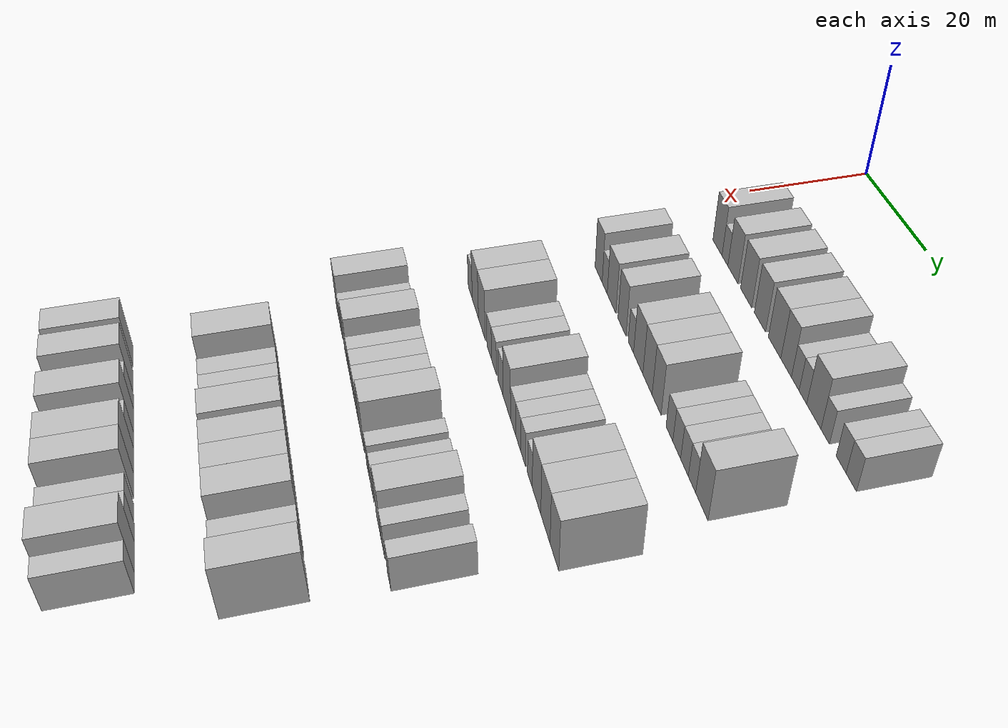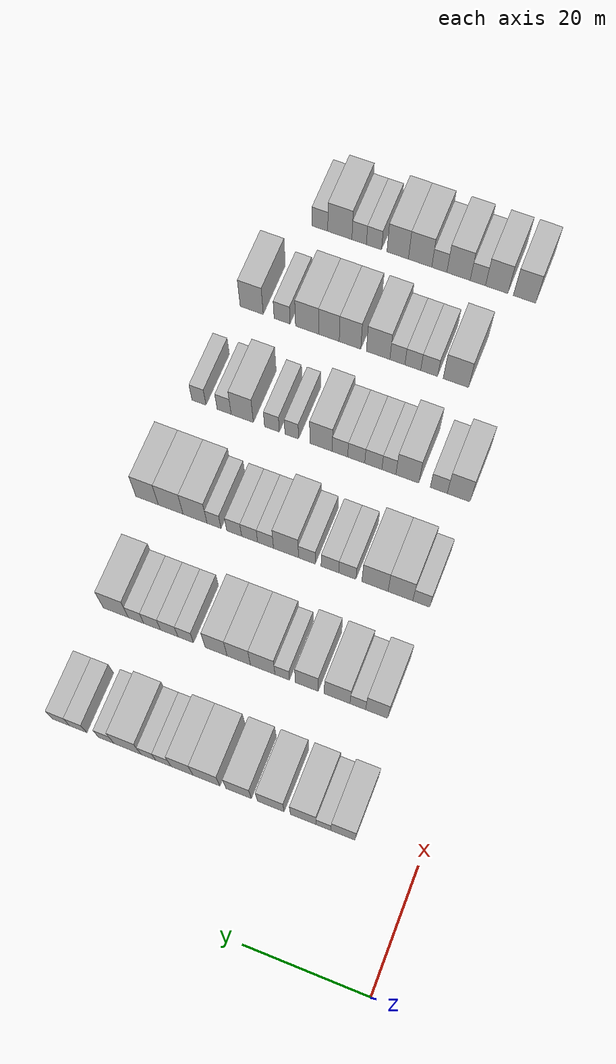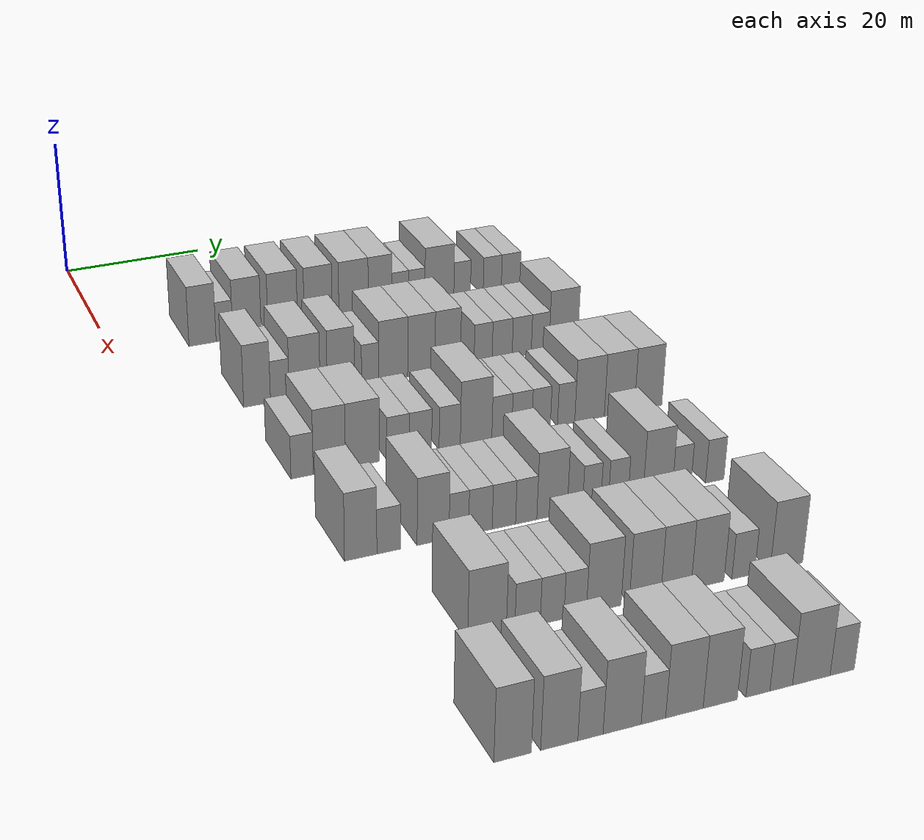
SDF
<sdf version="1.6">
 <world name="default">
  <model name="building_90">
   <static>1</static>
   <pose>25.0000 12.1221 0 0.000000 0.000000 0.000000</pose>
   <link name="link">
    <pose>0 0 4.50 0 0 0</pose>
    <collision name="collision"><geometry><box><size>10.0000 3.8618 9.0000</size></box></geometry></collision>
    <visual name="visual">
     <cast_shadows>0</cast_shadows>
     <geometry><box><size>10.0000 3.8618 9.0000</size></box></geometry>
     <material>
      <script>
       <uri>model://HANNAS_wall/materials/scripts</uri>
       <uri>model://HANNAS_wall/materials/textures</uri>
       <name>vrc/HANNAS_wall</name>
      </script>
     </material>
    </visual>
   </link>
  </model>
  <model name="building_91">
   <static>1</static>
   <pose>25.0000 15.2575 0 0.000000 0.000000 0.000000</pose>
   <link name="link">
    <pose>0 0 3.00 0 0 0</pose>
    <collision name="collision"><geometry><box><size>10.0000 2.4089 6.0000</size></box></geometry></collision>
    <visual name="visual">
     <cast_shadows>0</cast_shadows>
     <geometry><box><size>10.0000 2.4089 6.0000</size></box></geometry>
     <material>
      <script>
       <uri>model://HANNAS_wall/materials/scripts</uri>
       <uri>model://HANNAS_wall/materials/textures</uri>
       <name>vrc/HANNAS_wall</name>
      </script>
     </material>
    </visual>
   </link>
  </model>
  <model name="building_92">
   <static>1</static>
   <pose>25.0000 18.5162 0 0.000000 0.000000 0.000000</pose>
   <link name="link">
    <pose>0 0 4.50 0 0 0</pose>
    <collision name="collision"><geometry><box><size>10.0000 4.1084 9.0000</size></box></geometry></collision>
    <visual name="visual">
     <cast_shadows>0</cast_shadows>
     <geometry><box><size>10.0000 4.1084 9.0000</size></box></geometry>
     <material>
      <script>
       <uri>model://HANNAS_wall/materials/scripts</uri>
       <uri>model://HANNAS_wall/materials/textures</uri>
       <name>vrc/HANNAS_wall</name>
      </script>
     </material>
    </visual>
   </link>
  </model>
  <model name="building_93">
   <static>1</static>
   <pose>25.0000 23.7335 0 0.000000 0.000000 0.000000</pose>
   <link name="link">
    <pose>0 0 4.50 0 0 0</pose>
    <collision name="collision"><geometry><box><size>10.0000 4.3263 9.0000</size></box></geometry></collision>
    <visual name="visual">
     <cast_shadows>0</cast_shadows>
     <geometry><box><size>10.0000 4.3263 9.0000</size></box></geometry>
     <material>
      <script>
       <uri>model://HANNAS_wall/materials/scripts</uri>
       <uri>model://HANNAS_wall/materials/textures</uri>
       <name>vrc/HANNAS_wall</name>
      </script>
     </material>
    </visual>
   </link>
  </model>
  <model name="building_94">
   <static>1</static>
   <pose>25.0000 28.9676 0 0.000000 0.000000 0.000000</pose>
   <link name="link">
    <pose>0 0 4.50 0 0 0</pose>
    <collision name="collision"><geometry><box><size>10.0000 4.1418 9.0000</size></box></geometry></collision>
    <visual name="visual">
     <cast_shadows>0</cast_shadows>
     <geometry><box><size>10.0000 4.1418 9.0000</size></box></geometry>
     <material>
      <script>
       <uri>model://HANNAS_wall/materials/scripts</uri>
       <uri>model://HANNAS_wall/materials/textures</uri>
       <name>vrc/HANNAS_wall</name>
      </script>
     </material>
    </visual>
   </link>
  </model>
  <model name="building_95">
   <static>1</static>
   <pose>25.0000 34.2432 0 0.000000 0.000000 0.000000</pose>
   <link name="link">
    <pose>0 0 4.50 0 0 0</pose>
    <collision name="collision"><geometry><box><size>10.0000 4.4094 9.0000</size></box></geometry></collision>
    <visual name="visual">
     <cast_shadows>0</cast_shadows>
     <geometry><box><size>10.0000 4.4094 9.0000</size></box></geometry>
     <material>
      <script>
       <uri>model://HANNAS_wall/materials/scripts</uri>
       <uri>model://HANNAS_wall/materials/textures</uri>
       <name>vrc/HANNAS_wall</name>
      </script>
     </material>
    </visual>
   </link>
  </model>
  <model name="building_96">
   <static>1</static>
   <pose>25.0000 38.2541 0 0.000000 0.000000 0.000000</pose>
   <link name="link">
    <pose>0 0 4.50 0 0 0</pose>
    <collision name="collision"><geometry><box><size>10.0000 3.6123 9.0000</size></box></geometry></collision>
    <visual name="visual">
     <cast_shadows>0</cast_shadows>
     <geometry><box><size>10.0000 3.6123 9.0000</size></box></geometry>
     <material>
      <script>
       <uri>model://HANNAS_wall/materials/scripts</uri>
       <uri>model://HANNAS_wall/materials/textures</uri>
       <name>vrc/HANNAS_wall</name>
      </script>
     </material>
    </visual>
   </link>
  </model>
  <model name="building_97">
   <static>1</static>
   <pose>25.0000 41.3366 0 0.000000 0.000000 0.000000</pose>
   <link name="link">
    <pose>0 0 3.00 0 0 0</pose>
    <collision name="collision"><geometry><box><size>10.0000 2.5526 6.0000</size></box></geometry></collision>
    <visual name="visual">
     <cast_shadows>0</cast_shadows>
     <geometry><box><size>10.0000 2.5526 6.0000</size></box></geometry>
     <material>
      <script>
       <uri>model://HANNAS_wall/materials/scripts</uri>
       <uri>model://HANNAS_wall/materials/textures</uri>
       <name>vrc/HANNAS_wall</name>
      </script>
     </material>
    </visual>
   </link>
  </model>
  <model name="building_98">
   <static>1</static>
   <pose>25.0000 43.8496 0 0.000000 0.000000 0.000000</pose>
   <link name="link">
    <pose>0 0 3.00 0 0 0</pose>
    <collision name="collision"><geometry><box><size>10.0000 2.4736 6.0000</size></box></geometry></collision>
    <visual name="visual">
     <cast_shadows>0</cast_shadows>
     <geometry><box><size>10.0000 2.4736 6.0000</size></box></geometry>
     <material>
      <script>
       <uri>model://HANNAS_wall/materials/scripts</uri>
       <uri>model://HANNAS_wall/materials/textures</uri>
       <name>vrc/HANNAS_wall</name>
      </script>
     </material>
    </visual>
   </link>
  </model>
  <model name="building_99">
   <static>1</static>
   <pose>25.0000 47.3249 0 0.000000 0.000000 0.000000</pose>
   <link name="link">
    <pose>0 0 4.50 0 0 0</pose>
    <collision name="collision"><geometry><box><size>10.0000 4.4770 9.0000</size></box></geometry></collision>
    <visual name="visual">
     <cast_shadows>0</cast_shadows>
     <geometry><box><size>10.0000 4.4770 9.0000</size></box></geometry>
     <material>
      <script>
       <uri>model://HANNAS_wall/materials/scripts</uri>
       <uri>model://HANNAS_wall/materials/textures</uri>
       <name>vrc/HANNAS_wall</name>
      </script>
     </material>
    </visual>
   </link>
  </model>
  <model name="building_100">
   <static>1</static>
   <pose>25.0000 50.8622 0 0.000000 0.000000 0.000000</pose>
   <link name="link">
    <pose>0 0 3.00 0 0 0</pose>
    <collision name="collision"><geometry><box><size>10.0000 2.5975 6.0000</size></box></geometry></collision>
    <visual name="visual">
     <cast_shadows>0</cast_shadows>
     <geometry><box><size>10.0000 2.5975 6.0000</size></box></geometry>
     <material>
      <script>
       <uri>model://HANNAS_wall/materials/scripts</uri>
       <uri>model://HANNAS_wall/materials/textures</uri>
       <name>vrc/HANNAS_wall</name>
      </script>
     </material>
    </visual>
   </link>
  </model>
  <model name="building_101">
   <static>1</static>
   <pose>25.0000 55.5926 0 0.000000 0.000000 0.000000</pose>
   <link name="link">
    <pose>0 0 3.00 0 0 0</pose>
    <collision name="collision"><geometry><box><size>10.0000 2.8635 6.0000</size></box></geometry></collision>
    <visual name="visual">
     <cast_shadows>0</cast_shadows>
     <geometry><box><size>10.0000 2.8635 6.0000</size></box></geometry>
     <material>
      <script>
       <uri>model://HANNAS_wall/materials/scripts</uri>
       <uri>model://HANNAS_wall/materials/textures</uri>
       <name>vrc/HANNAS_wall</name>
      </script>
     </material>
    </visual>
   </link>
  </model>
  <model name="building_102">
   <static>1</static>
   <pose>25.0000 58.5027 0 0.000000 0.000000 0.000000</pose>
   <link name="link">
    <pose>0 0 3.00 0 0 0</pose>
    <collision name="collision"><geometry><box><size>10.0000 2.9566 6.0000</size></box></geometry></collision>
    <visual name="visual">
     <cast_shadows>0</cast_shadows>
     <geometry><box><size>10.0000 2.9566 6.0000</size></box></geometry>
     <material>
      <script>
       <uri>model://HANNAS_wall/materials/scripts</uri>
       <uri>model://HANNAS_wall/materials/textures</uri>
       <name>vrc/HANNAS_wall</name>
      </script>
     </material>
    </visual>
   </link>
  </model>
  <model name="building_256">
   <static>1</static>
   <pose>44.0000 13.9220 0 0.000000 0.000000 0.000000</pose>
   <link name="link">
    <pose>0 0 4.50 0 0 0</pose>
    <collision name="collision"><geometry><box><size>10.0000 3.6392 9.0000</size></box></geometry></collision>
    <visual name="visual">
     <cast_shadows>0</cast_shadows>
     <geometry><box><size>10.0000 3.6392 9.0000</size></box></geometry>
     <material>
      <script>
       <uri>model://HANNAS_wall/materials/scripts</uri>
       <uri>model://HANNAS_wall/materials/textures</uri>
       <name>vrc/HANNAS_wall</name>
      </script>
     </material>
    </visual>
   </link>
  </model>
  <model name="building_257">
   <static>1</static>
   <pose>44.0000 17.0309 0 0.000000 0.000000 0.000000</pose>
   <link name="link">
    <pose>0 0 3.00 0 0 0</pose>
    <collision name="collision"><geometry><box><size>10.0000 2.5785 6.0000</size></box></geometry></collision>
    <visual name="visual">
     <cast_shadows>0</cast_shadows>
     <geometry><box><size>10.0000 2.5785 6.0000</size></box></geometry>
     <material>
      <script>
       <uri>model://HANNAS_wall/materials/scripts</uri>
       <uri>model://HANNAS_wall/materials/textures</uri>
       <name>vrc/HANNAS_wall</name>
      </script>
     </material>
    </visual>
   </link>
  </model>
  <model name="building_258">
   <static>1</static>
   <pose>44.0000 20.4449 0 0.000000 0.000000 0.000000</pose>
   <link name="link">
    <pose>0 0 4.50 0 0 0</pose>
    <collision name="collision"><geometry><box><size>10.0000 4.2494 9.0000</size></box></geometry></collision>
    <visual name="visual">
     <cast_shadows>0</cast_shadows>
     <geometry><box><size>10.0000 4.2494 9.0000</size></box></geometry>
     <material>
      <script>
       <uri>model://HANNAS_wall/materials/scripts</uri>
       <uri>model://HANNAS_wall/materials/textures</uri>
       <name>vrc/HANNAS_wall</name>
      </script>
     </material>
    </visual>
   </link>
  </model>
  <model name="building_259">
   <static>1</static>
   <pose>44.0000 25.4684 0 0.000000 0.000000 0.000000</pose>
   <link name="link">
    <pose>0 0 4.50 0 0 0</pose>
    <collision name="collision"><geometry><box><size>10.0000 3.7976 9.0000</size></box></geometry></collision>
    <visual name="visual">
     <cast_shadows>0</cast_shadows>
     <geometry><box><size>10.0000 3.7976 9.0000</size></box></geometry>
     <material>
      <script>
       <uri>model://HANNAS_wall/materials/scripts</uri>
       <uri>model://HANNAS_wall/materials/textures</uri>
       <name>vrc/HANNAS_wall</name>
      </script>
     </material>
    </visual>
   </link>
  </model>
  <model name="building_260">
   <static>1</static>
   <pose>44.0000 29.5765 0 0.000000 0.000000 0.000000</pose>
   <link name="link">
    <pose>0 0 3.00 0 0 0</pose>
    <collision name="collision"><geometry><box><size>10.0000 2.4185 6.0000</size></box></geometry></collision>
    <visual name="visual">
     <cast_shadows>0</cast_shadows>
     <geometry><box><size>10.0000 2.4185 6.0000</size></box></geometry>
     <material>
      <script>
       <uri>model://HANNAS_wall/materials/scripts</uri>
       <uri>model://HANNAS_wall/materials/textures</uri>
       <name>vrc/HANNAS_wall</name>
      </script>
     </material>
    </visual>
   </link>
  </model>
  <model name="building_261">
   <static>1</static>
   <pose>44.0000 32.8462 0 0.000000 0.000000 0.000000</pose>
   <link name="link">
    <pose>0 0 4.50 0 0 0</pose>
    <collision name="collision"><geometry><box><size>10.0000 4.1210 9.0000</size></box></geometry></collision>
    <visual name="visual">
     <cast_shadows>0</cast_shadows>
     <geometry><box><size>10.0000 4.1210 9.0000</size></box></geometry>
     <material>
      <script>
       <uri>model://HANNAS_wall/materials/scripts</uri>
       <uri>model://HANNAS_wall/materials/textures</uri>
       <name>vrc/HANNAS_wall</name>
      </script>
     </material>
    </visual>
   </link>
  </model>
  <model name="building_262">
   <static>1</static>
   <pose>44.0000 36.8691 0 0.000000 0.000000 0.000000</pose>
   <link name="link">
    <pose>0 0 4.50 0 0 0</pose>
    <collision name="collision"><geometry><box><size>10.0000 3.9248 9.0000</size></box></geometry></collision>
    <visual name="visual">
     <cast_shadows>0</cast_shadows>
     <geometry><box><size>10.0000 3.9248 9.0000</size></box></geometry>
     <material>
      <script>
       <uri>model://HANNAS_wall/materials/scripts</uri>
       <uri>model://HANNAS_wall/materials/textures</uri>
       <name>vrc/HANNAS_wall</name>
      </script>
     </material>
    </visual>
   </link>
  </model>
  <model name="building_263">
   <static>1</static>
   <pose>44.0000 40.6826 0 0.000000 0.000000 0.000000</pose>
   <link name="link">
    <pose>0 0 4.50 0 0 0</pose>
    <collision name="collision"><geometry><box><size>10.0000 3.7023 9.0000</size></box></geometry></collision>
    <visual name="visual">
     <cast_shadows>0</cast_shadows>
     <geometry><box><size>10.0000 3.7023 9.0000</size></box></geometry>
     <material>
      <script>
       <uri>model://HANNAS_wall/materials/scripts</uri>
       <uri>model://HANNAS_wall/materials/textures</uri>
       <name>vrc/HANNAS_wall</name>
      </script>
     </material>
    </visual>
   </link>
  </model>
  <model name="building_264">
   <static>1</static>
   <pose>44.0000 45.8591 0 0.000000 0.000000 0.000000</pose>
   <link name="link">
    <pose>0 0 3.00 0 0 0</pose>
    <collision name="collision"><geometry><box><size>10.0000 2.6507 6.0000</size></box></geometry></collision>
    <visual name="visual">
     <cast_shadows>0</cast_shadows>
     <geometry><box><size>10.0000 2.6507 6.0000</size></box></geometry>
     <material>
      <script>
       <uri>model://HANNAS_wall/materials/scripts</uri>
       <uri>model://HANNAS_wall/materials/textures</uri>
       <name>vrc/HANNAS_wall</name>
      </script>
     </material>
    </visual>
   </link>
  </model>
  <model name="building_265">
   <static>1</static>
   <pose>44.0000 48.6683 0 0.000000 0.000000 0.000000</pose>
   <link name="link">
    <pose>0 0 3.00 0 0 0</pose>
    <collision name="collision"><geometry><box><size>10.0000 2.9677 6.0000</size></box></geometry></collision>
    <visual name="visual">
     <cast_shadows>0</cast_shadows>
     <geometry><box><size>10.0000 2.9677 6.0000</size></box></geometry>
     <material>
      <script>
       <uri>model://HANNAS_wall/materials/scripts</uri>
       <uri>model://HANNAS_wall/materials/textures</uri>
       <name>vrc/HANNAS_wall</name>
      </script>
     </material>
    </visual>
   </link>
  </model>
  <model name="building_266">
   <static>1</static>
   <pose>44.0000 51.5805 0 0.000000 0.000000 0.000000</pose>
   <link name="link">
    <pose>0 0 3.00 0 0 0</pose>
    <collision name="collision"><geometry><box><size>10.0000 2.8566 6.0000</size></box></geometry></collision>
    <visual name="visual">
     <cast_shadows>0</cast_shadows>
     <geometry><box><size>10.0000 2.8566 6.0000</size></box></geometry>
     <material>
      <script>
       <uri>model://HANNAS_wall/materials/scripts</uri>
       <uri>model://HANNAS_wall/materials/textures</uri>
       <name>vrc/HANNAS_wall</name>
      </script>
     </material>
    </visual>
   </link>
  </model>
  <model name="building_267">
   <static>1</static>
   <pose>44.0000 54.3404 0 0.000000 0.000000 0.000000</pose>
   <link name="link">
    <pose>0 0 3.00 0 0 0</pose>
    <collision name="collision"><geometry><box><size>10.0000 2.6632 6.0000</size></box></geometry></collision>
    <visual name="visual">
     <cast_shadows>0</cast_shadows>
     <geometry><box><size>10.0000 2.6632 6.0000</size></box></geometry>
     <material>
      <script>
       <uri>model://HANNAS_wall/materials/scripts</uri>
       <uri>model://HANNAS_wall/materials/textures</uri>
       <name>vrc/HANNAS_wall</name>
      </script>
     </material>
    </visual>
   </link>
  </model>
  <model name="building_268">
   <static>1</static>
   <pose>44.0000 57.8378 0 0.000000 0.000000 0.000000</pose>
   <link name="link">
    <pose>0 0 4.50 0 0 0</pose>
    <collision name="collision"><geometry><box><size>10.0000 4.3316 9.0000</size></box></geometry></collision>
    <visual name="visual">
     <cast_shadows>0</cast_shadows>
     <geometry><box><size>10.0000 4.3316 9.0000</size></box></geometry>
     <material>
      <script>
       <uri>model://HANNAS_wall/materials/scripts</uri>
       <uri>model://HANNAS_wall/materials/textures</uri>
       <name>vrc/HANNAS_wall</name>
      </script>
     </material>
    </visual>
   </link>
  </model>
  <model name="building_432">
   <static>1</static>
   <pose>63.0000 13.5928 0 0.000000 0.000000 0.000000</pose>
   <link name="link">
    <pose>0 0 3.00 0 0 0</pose>
    <collision name="collision"><geometry><box><size>10.0000 2.8592 6.0000</size></box></geometry></collision>
    <visual name="visual">
     <cast_shadows>0</cast_shadows>
     <geometry><box><size>10.0000 2.8592 6.0000</size></box></geometry>
     <material>
      <script>
       <uri>model://HANNAS_wall/materials/scripts</uri>
       <uri>model://HANNAS_wall/materials/textures</uri>
       <name>vrc/HANNAS_wall</name>
      </script>
     </material>
    </visual>
   </link>
  </model>
  <model name="building_433">
   <static>1</static>
   <pose>63.0000 17.1117 0 0.000000 0.000000 0.000000</pose>
   <link name="link">
    <pose>0 0 4.50 0 0 0</pose>
    <collision name="collision"><geometry><box><size>10.0000 4.1786 9.0000</size></box></geometry></collision>
    <visual name="visual">
     <cast_shadows>0</cast_shadows>
     <geometry><box><size>10.0000 4.1786 9.0000</size></box></geometry>
     <material>
      <script>
       <uri>model://HANNAS_wall/materials/scripts</uri>
       <uri>model://HANNAS_wall/materials/textures</uri>
       <name>vrc/HANNAS_wall</name>
      </script>
     </material>
    </visual>
   </link>
  </model>
  <model name="building_434">
   <static>1</static>
   <pose>63.0000 21.4201 0 0.000000 0.000000 0.000000</pose>
   <link name="link">
    <pose>0 0 4.50 0 0 0</pose>
    <collision name="collision"><geometry><box><size>10.0000 4.4380 9.0000</size></box></geometry></collision>
    <visual name="visual">
     <cast_shadows>0</cast_shadows>
     <geometry><box><size>10.0000 4.4380 9.0000</size></box></geometry>
     <material>
      <script>
       <uri>model://HANNAS_wall/materials/scripts</uri>
       <uri>model://HANNAS_wall/materials/textures</uri>
       <name>vrc/HANNAS_wall</name>
      </script>
     </material>
    </visual>
   </link>
  </model>
  <model name="building_435">
   <static>1</static>
   <pose>63.0000 26.1129 0 0.000000 0.000000 0.000000</pose>
   <link name="link">
    <pose>0 0 3.00 0 0 0</pose>
    <collision name="collision"><geometry><box><size>10.0000 2.9476 6.0000</size></box></geometry></collision>
    <visual name="visual">
     <cast_shadows>0</cast_shadows>
     <geometry><box><size>10.0000 2.9476 6.0000</size></box></geometry>
     <material>
      <script>
       <uri>model://HANNAS_wall/materials/scripts</uri>
       <uri>model://HANNAS_wall/materials/textures</uri>
       <name>vrc/HANNAS_wall</name>
      </script>
     </material>
    </visual>
   </link>
  </model>
  <model name="building_436">
   <static>1</static>
   <pose>63.0000 29.0862 0 0.000000 0.000000 0.000000</pose>
   <link name="link">
    <pose>0 0 3.00 0 0 0</pose>
    <collision name="collision"><geometry><box><size>10.0000 2.9990 6.0000</size></box></geometry></collision>
    <visual name="visual">
     <cast_shadows>0</cast_shadows>
     <geometry><box><size>10.0000 2.9990 6.0000</size></box></geometry>
     <material>
      <script>
       <uri>model://HANNAS_wall/materials/scripts</uri>
       <uri>model://HANNAS_wall/materials/textures</uri>
       <name>vrc/HANNAS_wall</name>
      </script>
     </material>
    </visual>
   </link>
  </model>
  <model name="building_437">
   <static>1</static>
   <pose>63.0000 33.0215 0 0.000000 0.000000 0.000000</pose>
   <link name="link">
    <pose>0 0 3.00 0 0 0</pose>
    <collision name="collision"><geometry><box><size>10.0000 2.8717 6.0000</size></box></geometry></collision>
    <visual name="visual">
     <cast_shadows>0</cast_shadows>
     <geometry><box><size>10.0000 2.8717 6.0000</size></box></geometry>
     <material>
      <script>
       <uri>model://HANNAS_wall/materials/scripts</uri>
       <uri>model://HANNAS_wall/materials/textures</uri>
       <name>vrc/HANNAS_wall</name>
      </script>
     </material>
    </visual>
   </link>
  </model>
  <model name="building_438">
   <static>1</static>
   <pose>63.0000 36.6079 0 0.000000 0.000000 0.000000</pose>
   <link name="link">
    <pose>0 0 4.50 0 0 0</pose>
    <collision name="collision"><geometry><box><size>10.0000 4.3013 9.0000</size></box></geometry></collision>
    <visual name="visual">
     <cast_shadows>0</cast_shadows>
     <geometry><box><size>10.0000 4.3013 9.0000</size></box></geometry>
     <material>
      <script>
       <uri>model://HANNAS_wall/materials/scripts</uri>
       <uri>model://HANNAS_wall/materials/textures</uri>
       <name>vrc/HANNAS_wall</name>
      </script>
     </material>
    </visual>
   </link>
  </model>
  <model name="building_439">
   <static>1</static>
   <pose>63.0000 40.1319 0 0.000000 0.000000 0.000000</pose>
   <link name="link">
    <pose>0 0 3.00 0 0 0</pose>
    <collision name="collision"><geometry><box><size>10.0000 2.7467 6.0000</size></box></geometry></collision>
    <visual name="visual">
     <cast_shadows>0</cast_shadows>
     <geometry><box><size>10.0000 2.7467 6.0000</size></box></geometry>
     <material>
      <script>
       <uri>model://HANNAS_wall/materials/scripts</uri>
       <uri>model://HANNAS_wall/materials/textures</uri>
       <name>vrc/HANNAS_wall</name>
      </script>
     </material>
    </visual>
   </link>
  </model>
  <model name="building_440">
   <static>1</static>
   <pose>63.0000 42.8915 0 0.000000 0.000000 0.000000</pose>
   <link name="link">
    <pose>0 0 3.00 0 0 0</pose>
    <collision name="collision"><geometry><box><size>10.0000 2.7725 6.0000</size></box></geometry></collision>
    <visual name="visual">
     <cast_shadows>0</cast_shadows>
     <geometry><box><size>10.0000 2.7725 6.0000</size></box></geometry>
     <material>
      <script>
       <uri>model://HANNAS_wall/materials/scripts</uri>
       <uri>model://HANNAS_wall/materials/textures</uri>
       <name>vrc/HANNAS_wall</name>
      </script>
     </material>
    </visual>
   </link>
  </model>
  <model name="building_441">
   <static>1</static>
   <pose>63.0000 45.5735 0 0.000000 0.000000 0.000000</pose>
   <link name="link">
    <pose>0 0 3.00 0 0 0</pose>
    <collision name="collision"><geometry><box><size>10.0000 2.5914 6.0000</size></box></geometry></collision>
    <visual name="visual">
     <cast_shadows>0</cast_shadows>
     <geometry><box><size>10.0000 2.5914 6.0000</size></box></geometry>
     <material>
      <script>
       <uri>model://HANNAS_wall/materials/scripts</uri>
       <uri>model://HANNAS_wall/materials/textures</uri>
       <name>vrc/HANNAS_wall</name>
      </script>
     </material>
    </visual>
   </link>
  </model>
  <model name="building_442">
   <static>1</static>
   <pose>63.0000 49.0884 0 0.000000 0.000000 0.000000</pose>
   <link name="link">
    <pose>0 0 3.00 0 0 0</pose>
    <collision name="collision"><geometry><box><size>10.0000 2.4385 6.0000</size></box></geometry></collision>
    <visual name="visual">
     <cast_shadows>0</cast_shadows>
     <geometry><box><size>10.0000 2.4385 6.0000</size></box></geometry>
     <material>
      <script>
       <uri>model://HANNAS_wall/materials/scripts</uri>
       <uri>model://HANNAS_wall/materials/textures</uri>
       <name>vrc/HANNAS_wall</name>
      </script>
     </material>
    </visual>
   </link>
  </model>
  <model name="building_443">
   <static>1</static>
   <pose>63.0000 52.4089 0 0.000000 0.000000 0.000000</pose>
   <link name="link">
    <pose>0 0 4.50 0 0 0</pose>
    <collision name="collision"><geometry><box><size>10.0000 4.2025 9.0000</size></box></geometry></collision>
    <visual name="visual">
     <cast_shadows>0</cast_shadows>
     <geometry><box><size>10.0000 4.2025 9.0000</size></box></geometry>
     <material>
      <script>
       <uri>model://HANNAS_wall/materials/scripts</uri>
       <uri>model://HANNAS_wall/materials/textures</uri>
       <name>vrc/HANNAS_wall</name>
      </script>
     </material>
    </visual>
   </link>
  </model>
  <model name="building_444">
   <static>1</static>
   <pose>63.0000 56.6744 0 0.000000 0.000000 0.000000</pose>
   <link name="link">
    <pose>0 0 4.50 0 0 0</pose>
    <collision name="collision"><geometry><box><size>10.0000 4.3285 9.0000</size></box></geometry></collision>
    <visual name="visual">
     <cast_shadows>0</cast_shadows>
     <geometry><box><size>10.0000 4.3285 9.0000</size></box></geometry>
     <material>
      <script>
       <uri>model://HANNAS_wall/materials/scripts</uri>
       <uri>model://HANNAS_wall/materials/textures</uri>
       <name>vrc/HANNAS_wall</name>
      </script>
     </material>
    </visual>
   </link>
  </model>
  <model name="building_445">
   <static>1</static>
   <pose>63.0000 60.8330 0 0.000000 0.000000 0.000000</pose>
   <link name="link">
    <pose>0 0 4.50 0 0 0</pose>
    <collision name="collision"><geometry><box><size>10.0000 3.9887 9.0000</size></box></geometry></collision>
    <visual name="visual">
     <cast_shadows>0</cast_shadows>
     <geometry><box><size>10.0000 3.9887 9.0000</size></box></geometry>
     <material>
      <script>
       <uri>model://HANNAS_wall/materials/scripts</uri>
       <uri>model://HANNAS_wall/materials/textures</uri>
       <name>vrc/HANNAS_wall</name>
      </script>
     </material>
    </visual>
   </link>
  </model>
  <model name="building_607">
   <static>1</static>
   <pose>82.0000 14.1231 0 0.000000 0.000000 0.000000</pose>
   <link name="link">
    <pose>0 0 4.50 0 0 0</pose>
    <collision name="collision"><geometry><box><size>10.0000 3.9175 9.0000</size></box></geometry></collision>
    <visual name="visual">
     <cast_shadows>0</cast_shadows>
     <geometry><box><size>10.0000 3.9175 9.0000</size></box></geometry>
     <material>
      <script>
       <uri>model://HANNAS_wall/materials/scripts</uri>
       <uri>model://HANNAS_wall/materials/textures</uri>
       <name>vrc/HANNAS_wall</name>
      </script>
     </material>
    </visual>
   </link>
  </model>
  <model name="building_608">
   <static>1</static>
   <pose>82.0000 17.5470 0 0.000000 0.000000 0.000000</pose>
   <link name="link">
    <pose>0 0 3.00 0 0 0</pose>
    <collision name="collision"><geometry><box><size>10.0000 2.9303 6.0000</size></box></geometry></collision>
    <visual name="visual">
     <cast_shadows>0</cast_shadows>
     <geometry><box><size>10.0000 2.9303 6.0000</size></box></geometry>
     <material>
      <script>
       <uri>model://HANNAS_wall/materials/scripts</uri>
       <uri>model://HANNAS_wall/materials/textures</uri>
       <name>vrc/HANNAS_wall</name>
      </script>
     </material>
    </visual>
   </link>
  </model>
  <model name="building_609">
   <static>1</static>
   <pose>82.0000 22.9975 0 0.000000 0.000000 0.000000</pose>
   <link name="link">
    <pose>0 0 4.50 0 0 0</pose>
    <collision name="collision"><geometry><box><size>10.0000 3.9706 9.0000</size></box></geometry></collision>
    <visual name="visual">
     <cast_shadows>0</cast_shadows>
     <geometry><box><size>10.0000 3.9706 9.0000</size></box></geometry>
     <material>
      <script>
       <uri>model://HANNAS_wall/materials/scripts</uri>
       <uri>model://HANNAS_wall/materials/textures</uri>
       <name>vrc/HANNAS_wall</name>
      </script>
     </material>
    </visual>
   </link>
  </model>
  <model name="building_610">
   <static>1</static>
   <pose>82.0000 26.2047 0 0.000000 0.000000 0.000000</pose>
   <link name="link">
    <pose>0 0 3.00 0 0 0</pose>
    <collision name="collision"><geometry><box><size>10.0000 2.4438 6.0000</size></box></geometry></collision>
    <visual name="visual">
     <cast_shadows>0</cast_shadows>
     <geometry><box><size>10.0000 2.4438 6.0000</size></box></geometry>
     <material>
      <script>
       <uri>model://HANNAS_wall/materials/scripts</uri>
       <uri>model://HANNAS_wall/materials/textures</uri>
       <name>vrc/HANNAS_wall</name>
      </script>
     </material>
    </visual>
   </link>
  </model>
  <model name="building_611">
   <static>1</static>
   <pose>82.0000 28.9193 0 0.000000 0.000000 0.000000</pose>
   <link name="link">
    <pose>0 0 3.00 0 0 0</pose>
    <collision name="collision"><geometry><box><size>10.0000 2.9854 6.0000</size></box></geometry></collision>
    <visual name="visual">
     <cast_shadows>0</cast_shadows>
     <geometry><box><size>10.0000 2.9854 6.0000</size></box></geometry>
     <material>
      <script>
       <uri>model://HANNAS_wall/materials/scripts</uri>
       <uri>model://HANNAS_wall/materials/textures</uri>
       <name>vrc/HANNAS_wall</name>
      </script>
     </material>
    </visual>
   </link>
  </model>
  <model name="building_612">
   <static>1</static>
   <pose>82.0000 31.9011 0 0.000000 0.000000 0.000000</pose>
   <link name="link">
    <pose>0 0 3.00 0 0 0</pose>
    <collision name="collision"><geometry><box><size>10.0000 2.9783 6.0000</size></box></geometry></collision>
    <visual name="visual">
     <cast_shadows>0</cast_shadows>
     <geometry><box><size>10.0000 2.9783 6.0000</size></box></geometry>
     <material>
      <script>
       <uri>model://HANNAS_wall/materials/scripts</uri>
       <uri>model://HANNAS_wall/materials/textures</uri>
       <name>vrc/HANNAS_wall</name>
      </script>
     </material>
    </visual>
   </link>
  </model>
  <model name="building_613">
   <static>1</static>
   <pose>82.0000 34.7546 0 0.000000 0.000000 0.000000</pose>
   <link name="link">
    <pose>0 0 3.00 0 0 0</pose>
    <collision name="collision"><geometry><box><size>10.0000 2.7288 6.0000</size></box></geometry></collision>
    <visual name="visual">
     <cast_shadows>0</cast_shadows>
     <geometry><box><size>10.0000 2.7288 6.0000</size></box></geometry>
     <material>
      <script>
       <uri>model://HANNAS_wall/materials/scripts</uri>
       <uri>model://HANNAS_wall/materials/textures</uri>
       <name>vrc/HANNAS_wall</name>
      </script>
     </material>
    </visual>
   </link>
  </model>
  <model name="building_614">
   <static>1</static>
   <pose>82.0000 38.0854 0 0.000000 0.000000 0.000000</pose>
   <link name="link">
    <pose>0 0 4.50 0 0 0</pose>
    <collision name="collision"><geometry><box><size>10.0000 3.9326 9.0000</size></box></geometry></collision>
    <visual name="visual">
     <cast_shadows>0</cast_shadows>
     <geometry><box><size>10.0000 3.9326 9.0000</size></box></geometry>
     <material>
      <script>
       <uri>model://HANNAS_wall/materials/scripts</uri>
       <uri>model://HANNAS_wall/materials/textures</uri>
       <name>vrc/HANNAS_wall</name>
      </script>
     </material>
    </visual>
   </link>
  </model>
  <model name="building_615">
   <static>1</static>
   <pose>82.0000 43.2528 0 0.000000 0.000000 0.000000</pose>
   <link name="link">
    <pose>0 0 3.00 0 0 0</pose>
    <collision name="collision"><geometry><box><size>10.0000 2.4023 6.0000</size></box></geometry></collision>
    <visual name="visual">
     <cast_shadows>0</cast_shadows>
     <geometry><box><size>10.0000 2.4023 6.0000</size></box></geometry>
     <material>
      <script>
       <uri>model://HANNAS_wall/materials/scripts</uri>
       <uri>model://HANNAS_wall/materials/textures</uri>
       <name>vrc/HANNAS_wall</name>
      </script>
     </material>
    </visual>
   </link>
  </model>
  <model name="building_616">
   <static>1</static>
   <pose>82.0000 46.7648 0 0.000000 0.000000 0.000000</pose>
   <link name="link">
    <pose>0 0 3.00 0 0 0</pose>
    <collision name="collision"><geometry><box><size>10.0000 2.6216 6.0000</size></box></geometry></collision>
    <visual name="visual">
     <cast_shadows>0</cast_shadows>
     <geometry><box><size>10.0000 2.6216 6.0000</size></box></geometry>
     <material>
      <script>
       <uri>model://HANNAS_wall/materials/scripts</uri>
       <uri>model://HANNAS_wall/materials/textures</uri>
       <name>vrc/HANNAS_wall</name>
      </script>
     </material>
    </visual>
   </link>
  </model>
  <model name="building_617">
   <static>1</static>
   <pose>82.0000 52.0614 0 0.000000 0.000000 0.000000</pose>
   <link name="link">
    <pose>0 0 4.50 0 0 0</pose>
    <collision name="collision"><geometry><box><size>10.0000 3.9716 9.0000</size></box></geometry></collision>
    <visual name="visual">
     <cast_shadows>0</cast_shadows>
     <geometry><box><size>10.0000 3.9716 9.0000</size></box></geometry>
     <material>
      <script>
       <uri>model://HANNAS_wall/materials/scripts</uri>
       <uri>model://HANNAS_wall/materials/textures</uri>
       <name>vrc/HANNAS_wall</name>
      </script>
     </material>
    </visual>
   </link>
  </model>
  <model name="building_618">
   <static>1</static>
   <pose>82.0000 55.3039 0 0.000000 0.000000 0.000000</pose>
   <link name="link">
    <pose>0 0 3.00 0 0 0</pose>
    <collision name="collision"><geometry><box><size>10.0000 2.5134 6.0000</size></box></geometry></collision>
    <visual name="visual">
     <cast_shadows>0</cast_shadows>
     <geometry><box><size>10.0000 2.5134 6.0000</size></box></geometry>
     <material>
      <script>
       <uri>model://HANNAS_wall/materials/scripts</uri>
       <uri>model://HANNAS_wall/materials/textures</uri>
       <name>vrc/HANNAS_wall</name>
      </script>
     </material>
    </visual>
   </link>
  </model>
  <model name="building_619">
   <static>1</static>
   <pose>82.0000 59.8286 0 0.000000 0.000000 0.000000</pose>
   <link name="link">
    <pose>0 0 3.00 0 0 0</pose>
    <collision name="collision"><geometry><box><size>10.0000 2.5361 6.0000</size></box></geometry></collision>
    <visual name="visual">
     <cast_shadows>0</cast_shadows>
     <geometry><box><size>10.0000 2.5361 6.0000</size></box></geometry>
     <material>
      <script>
       <uri>model://HANNAS_wall/materials/scripts</uri>
       <uri>model://HANNAS_wall/materials/textures</uri>
       <name>vrc/HANNAS_wall</name>
      </script>
     </material>
    </visual>
   </link>
  </model>
  <model name="building_783">
   <static>1</static>
   <pose>101.0000 21.4140 0 0.000000 0.000000 0.000000</pose>
   <link name="link">
    <pose>0 0 4.50 0 0 0</pose>
    <collision name="collision"><geometry><box><size>10.0000 4.4961 9.0000</size></box></geometry></collision>
    <visual name="visual">
     <cast_shadows>0</cast_shadows>
     <geometry><box><size>10.0000 4.4961 9.0000</size></box></geometry>
     <material>
      <script>
       <uri>model://HANNAS_wall/materials/scripts</uri>
       <uri>model://HANNAS_wall/materials/textures</uri>
       <name>vrc/HANNAS_wall</name>
      </script>
     </material>
    </visual>
   </link>
  </model>
  <model name="building_784">
   <static>1</static>
   <pose>101.0000 26.1568 0 0.000000 0.000000 0.000000</pose>
   <link name="link">
    <pose>0 0 3.00 0 0 0</pose>
    <collision name="collision"><geometry><box><size>10.0000 2.9895 6.0000</size></box></geometry></collision>
    <visual name="visual">
     <cast_shadows>0</cast_shadows>
     <geometry><box><size>10.0000 2.9895 6.0000</size></box></geometry>
     <material>
      <script>
       <uri>model://HANNAS_wall/materials/scripts</uri>
       <uri>model://HANNAS_wall/materials/textures</uri>
       <name>vrc/HANNAS_wall</name>
      </script>
     </material>
    </visual>
   </link>
  </model>
  <model name="building_785">
   <static>1</static>
   <pose>101.0000 29.0649 0 0.000000 0.000000 0.000000</pose>
   <link name="link">
    <pose>0 0 3.00 0 0 0</pose>
    <collision name="collision"><geometry><box><size>10.0000 2.8266 6.0000</size></box></geometry></collision>
    <visual name="visual">
     <cast_shadows>0</cast_shadows>
     <geometry><box><size>10.0000 2.8266 6.0000</size></box></geometry>
     <material>
      <script>
       <uri>model://HANNAS_wall/materials/scripts</uri>
       <uri>model://HANNAS_wall/materials/textures</uri>
       <name>vrc/HANNAS_wall</name>
      </script>
     </material>
    </visual>
   </link>
  </model>
  <model name="building_786">
   <static>1</static>
   <pose>101.0000 31.8231 0 0.000000 0.000000 0.000000</pose>
   <link name="link">
    <pose>0 0 3.00 0 0 0</pose>
    <collision name="collision"><geometry><box><size>10.0000 2.6899 6.0000</size></box></geometry></collision>
    <visual name="visual">
     <cast_shadows>0</cast_shadows>
     <geometry><box><size>10.0000 2.6899 6.0000</size></box></geometry>
     <material>
      <script>
       <uri>model://HANNAS_wall/materials/scripts</uri>
       <uri>model://HANNAS_wall/materials/textures</uri>
       <name>vrc/HANNAS_wall</name>
      </script>
     </material>
    </visual>
   </link>
  </model>
  <model name="building_787">
   <static>1</static>
   <pose>101.0000 35.2775 0 0.000000 0.000000 0.000000</pose>
   <link name="link">
    <pose>0 0 4.50 0 0 0</pose>
    <collision name="collision"><geometry><box><size>10.0000 4.2188 9.0000</size></box></geometry></collision>
    <visual name="visual">
     <cast_shadows>0</cast_shadows>
     <geometry><box><size>10.0000 4.2188 9.0000</size></box></geometry>
     <material>
      <script>
       <uri>model://HANNAS_wall/materials/scripts</uri>
       <uri>model://HANNAS_wall/materials/textures</uri>
       <name>vrc/HANNAS_wall</name>
      </script>
     </material>
    </visual>
   </link>
  </model>
  <model name="building_788">
   <static>1</static>
   <pose>101.0000 40.3310 0 0.000000 0.000000 0.000000</pose>
   <link name="link">
    <pose>0 0 4.50 0 0 0</pose>
    <collision name="collision"><geometry><box><size>10.0000 3.8883 9.0000</size></box></geometry></collision>
    <visual name="visual">
     <cast_shadows>0</cast_shadows>
     <geometry><box><size>10.0000 3.8883 9.0000</size></box></geometry>
     <material>
      <script>
       <uri>model://HANNAS_wall/materials/scripts</uri>
       <uri>model://HANNAS_wall/materials/textures</uri>
       <name>vrc/HANNAS_wall</name>
      </script>
     </material>
    </visual>
   </link>
  </model>
  <model name="building_789">
   <static>1</static>
   <pose>101.0000 44.1567 0 0.000000 0.000000 0.000000</pose>
   <link name="link">
    <pose>0 0 4.50 0 0 0</pose>
    <collision name="collision"><geometry><box><size>10.0000 3.7631 9.0000</size></box></geometry></collision>
    <visual name="visual">
     <cast_shadows>0</cast_shadows>
     <geometry><box><size>10.0000 3.7631 9.0000</size></box></geometry>
     <material>
      <script>
       <uri>model://HANNAS_wall/materials/scripts</uri>
       <uri>model://HANNAS_wall/materials/textures</uri>
       <name>vrc/HANNAS_wall</name>
      </script>
     </material>
    </visual>
   </link>
  </model>
  <model name="building_790">
   <static>1</static>
   <pose>101.0000 48.1194 0 0.000000 0.000000 0.000000</pose>
   <link name="link">
    <pose>0 0 4.50 0 0 0</pose>
    <collision name="collision"><geometry><box><size>10.0000 4.1622 9.0000</size></box></geometry></collision>
    <visual name="visual">
     <cast_shadows>0</cast_shadows>
     <geometry><box><size>10.0000 4.1622 9.0000</size></box></geometry>
     <material>
      <script>
       <uri>model://HANNAS_wall/materials/scripts</uri>
       <uri>model://HANNAS_wall/materials/textures</uri>
       <name>vrc/HANNAS_wall</name>
      </script>
     </material>
    </visual>
   </link>
  </model>
  <model name="building_791">
   <static>1</static>
   <pose>101.0000 52.6522 0 0.000000 0.000000 0.000000</pose>
   <link name="link">
    <pose>0 0 3.00 0 0 0</pose>
    <collision name="collision"><geometry><box><size>10.0000 2.9035 6.0000</size></box></geometry></collision>
    <visual name="visual">
     <cast_shadows>0</cast_shadows>
     <geometry><box><size>10.0000 2.9035 6.0000</size></box></geometry>
     <material>
      <script>
       <uri>model://HANNAS_wall/materials/scripts</uri>
       <uri>model://HANNAS_wall/materials/textures</uri>
       <name>vrc/HANNAS_wall</name>
      </script>
     </material>
    </visual>
   </link>
  </model>
  <model name="building_792">
   <static>1</static>
   <pose>101.0000 58.2184 0 0.000000 0.000000 0.000000</pose>
   <link name="link">
    <pose>0 0 4.50 0 0 0</pose>
    <collision name="collision"><geometry><box><size>10.0000 4.2289 9.0000</size></box></geometry></collision>
    <visual name="visual">
     <cast_shadows>0</cast_shadows>
     <geometry><box><size>10.0000 4.2289 9.0000</size></box></geometry>
     <material>
      <script>
       <uri>model://HANNAS_wall/materials/scripts</uri>
       <uri>model://HANNAS_wall/materials/textures</uri>
       <name>vrc/HANNAS_wall</name>
      </script>
     </material>
    </visual>
   </link>
  </model>
  <model name="building_957">
   <static>1</static>
   <pose>120.0000 15.8026 0 0.000000 0.000000 0.000000</pose>
   <link name="link">
    <pose>0 0 4.50 0 0 0</pose>
    <collision name="collision"><geometry><box><size>10.0000 4.0137 9.0000</size></box></geometry></collision>
    <visual name="visual">
     <cast_shadows>0</cast_shadows>
     <geometry><box><size>10.0000 4.0137 9.0000</size></box></geometry>
     <material>
      <script>
       <uri>model://HANNAS_wall/materials/scripts</uri>
       <uri>model://HANNAS_wall/materials/textures</uri>
       <name>vrc/HANNAS_wall</name>
      </script>
     </material>
    </visual>
   </link>
  </model>
  <model name="building_958">
   <static>1</static>
   <pose>120.0000 20.8295 0 0.000000 0.000000 0.000000</pose>
   <link name="link">
    <pose>0 0 4.50 0 0 0</pose>
    <collision name="collision"><geometry><box><size>10.0000 4.0402 9.0000</size></box></geometry></collision>
    <visual name="visual">
     <cast_shadows>0</cast_shadows>
     <geometry><box><size>10.0000 4.0402 9.0000</size></box></geometry>
     <material>
      <script>
       <uri>model://HANNAS_wall/materials/scripts</uri>
       <uri>model://HANNAS_wall/materials/textures</uri>
       <name>vrc/HANNAS_wall</name>
      </script>
     </material>
    </visual>
   </link>
  </model>
  <model name="building_959">
   <static>1</static>
   <pose>120.0000 24.2374 0 0.000000 0.000000 0.000000</pose>
   <link name="link">
    <pose>0 0 3.00 0 0 0</pose>
    <collision name="collision"><geometry><box><size>10.0000 2.7755 6.0000</size></box></geometry></collision>
    <visual name="visual">
     <cast_shadows>0</cast_shadows>
     <geometry><box><size>10.0000 2.7755 6.0000</size></box></geometry>
     <material>
      <script>
       <uri>model://HANNAS_wall/materials/scripts</uri>
       <uri>model://HANNAS_wall/materials/textures</uri>
       <name>vrc/HANNAS_wall</name>
      </script>
     </material>
    </visual>
   </link>
  </model>
  <model name="building_960">
   <static>1</static>
   <pose>120.0000 27.7427 0 0.000000 0.000000 0.000000</pose>
   <link name="link">
    <pose>0 0 4.50 0 0 0</pose>
    <collision name="collision"><geometry><box><size>10.0000 4.2351 9.0000</size></box></geometry></collision>
    <visual name="visual">
     <cast_shadows>0</cast_shadows>
     <geometry><box><size>10.0000 4.2351 9.0000</size></box></geometry>
     <material>
      <script>
       <uri>model://HANNAS_wall/materials/scripts</uri>
       <uri>model://HANNAS_wall/materials/textures</uri>
       <name>vrc/HANNAS_wall</name>
      </script>
     </material>
    </visual>
   </link>
  </model>
  <model name="building_961">
   <static>1</static>
   <pose>120.0000 31.2386 0 0.000000 0.000000 0.000000</pose>
   <link name="link">
    <pose>0 0 3.00 0 0 0</pose>
    <collision name="collision"><geometry><box><size>10.0000 2.7568 6.0000</size></box></geometry></collision>
    <visual name="visual">
     <cast_shadows>0</cast_shadows>
     <geometry><box><size>10.0000 2.7568 6.0000</size></box></geometry>
     <material>
      <script>
       <uri>model://HANNAS_wall/materials/scripts</uri>
       <uri>model://HANNAS_wall/materials/textures</uri>
       <name>vrc/HANNAS_wall</name>
      </script>
     </material>
    </visual>
   </link>
  </model>
  <model name="building_962">
   <static>1</static>
   <pose>120.0000 34.7517 0 0.000000 0.000000 0.000000</pose>
   <link name="link">
    <pose>0 0 4.50 0 0 0</pose>
    <collision name="collision"><geometry><box><size>10.0000 4.2693 9.0000</size></box></geometry></collision>
    <visual name="visual">
     <cast_shadows>0</cast_shadows>
     <geometry><box><size>10.0000 4.2693 9.0000</size></box></geometry>
     <material>
      <script>
       <uri>model://HANNAS_wall/materials/scripts</uri>
       <uri>model://HANNAS_wall/materials/textures</uri>
       <name>vrc/HANNAS_wall</name>
      </script>
     </material>
    </visual>
   </link>
  </model>
  <model name="building_963">
   <static>1</static>
   <pose>120.0000 38.8597 0 0.000000 0.000000 0.000000</pose>
   <link name="link">
    <pose>0 0 4.50 0 0 0</pose>
    <collision name="collision"><geometry><box><size>10.0000 3.9467 9.0000</size></box></geometry></collision>
    <visual name="visual">
     <cast_shadows>0</cast_shadows>
     <geometry><box><size>10.0000 3.9467 9.0000</size></box></geometry>
     <material>
      <script>
       <uri>model://HANNAS_wall/materials/scripts</uri>
       <uri>model://HANNAS_wall/materials/textures</uri>
       <name>vrc/HANNAS_wall</name>
      </script>
     </material>
    </visual>
   </link>
  </model>
  <model name="building_964">
   <static>1</static>
   <pose>120.0000 43.2332 0 0.000000 0.000000 0.000000</pose>
   <link name="link">
    <pose>0 0 3.00 0 0 0</pose>
    <collision name="collision"><geometry><box><size>10.0000 2.8003 6.0000</size></box></geometry></collision>
    <visual name="visual">
     <cast_shadows>0</cast_shadows>
     <geometry><box><size>10.0000 2.8003 6.0000</size></box></geometry>
     <material>
      <script>
       <uri>model://HANNAS_wall/materials/scripts</uri>
       <uri>model://HANNAS_wall/materials/textures</uri>
       <name>vrc/HANNAS_wall</name>
      </script>
     </material>
    </visual>
   </link>
  </model>
  <model name="building_965">
   <static>1</static>
   <pose>120.0000 45.9733 0 0.000000 0.000000 0.000000</pose>
   <link name="link">
    <pose>0 0 3.00 0 0 0</pose>
    <collision name="collision"><geometry><box><size>10.0000 2.6799 6.0000</size></box></geometry></collision>
    <visual name="visual">
     <cast_shadows>0</cast_shadows>
     <geometry><box><size>10.0000 2.6799 6.0000</size></box></geometry>
     <material>
      <script>
       <uri>model://HANNAS_wall/materials/scripts</uri>
       <uri>model://HANNAS_wall/materials/textures</uri>
       <name>vrc/HANNAS_wall</name>
      </script>
     </material>
    </visual>
   </link>
  </model>
  <model name="building_966">
   <static>1</static>
   <pose>120.0000 49.5577 0 0.000000 0.000000 0.000000</pose>
   <link name="link">
    <pose>0 0 4.50 0 0 0</pose>
    <collision name="collision"><geometry><box><size>10.0000 4.4889 9.0000</size></box></geometry></collision>
    <visual name="visual">
     <cast_shadows>0</cast_shadows>
     <geometry><box><size>10.0000 4.4889 9.0000</size></box></geometry>
     <material>
      <script>
       <uri>model://HANNAS_wall/materials/scripts</uri>
       <uri>model://HANNAS_wall/materials/textures</uri>
       <name>vrc/HANNAS_wall</name>
      </script>
     </material>
    </visual>
   </link>
  </model>
  <model name="building_967">
   <static>1</static>
   <pose>120.0000 53.2608 0 0.000000 0.000000 0.000000</pose>
   <link name="link">
    <pose>0 0 3.00 0 0 0</pose>
    <collision name="collision"><geometry><box><size>10.0000 2.9171 6.0000</size></box></geometry></collision>
    <visual name="visual">
     <cast_shadows>0</cast_shadows>
     <geometry><box><size>10.0000 2.9171 6.0000</size></box></geometry>
     <material>
      <script>
       <uri>model://HANNAS_wall/materials/scripts</uri>
       <uri>model://HANNAS_wall/materials/textures</uri>
       <name>vrc/HANNAS_wall</name>
      </script>
     </material>
    </visual>
   </link>
  </model>
 </world>
</sdf>
